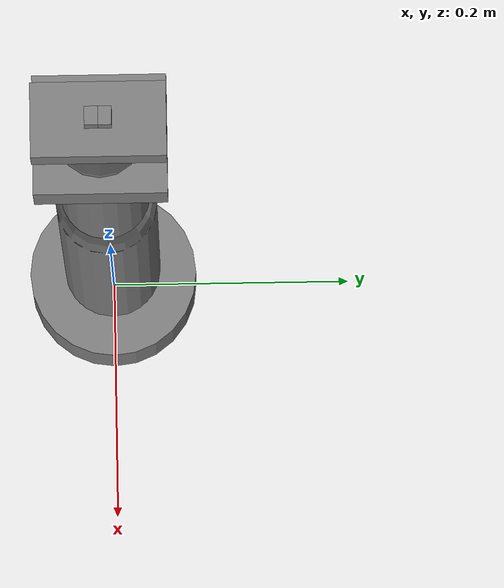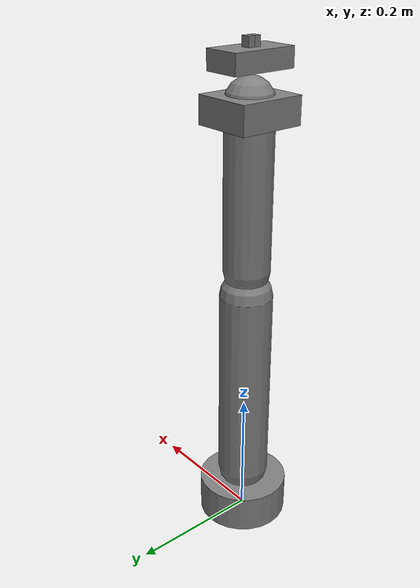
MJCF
<mujoco model="demo3_arm">
  <compiler angle="radian" autolimits="true"/>
  <option timestep="0.002" gravity="0 0 -9.81"/>

  <default>
    <default class="servo">
      <general gaintype="fixed" biastype="affine" gainprm="600" biasprm="0 -600 -60"
               ctrlrange="-3.2 3.2" forcerange="-120 120"/>
    </default>
    <default class="pinch">
      <general gaintype="fixed" biastype="affine" gainprm="400" biasprm="0 -400 -40"
               ctrlrange="-0.05 0.05" forcerange="-60 60"/>
    </default>
    <default class="collision">
      <geom contype="1" conaffinity="1" solref="0.002 1" solimp="0.95 0.99 0.001"/>
    </default>
  </default>

  <worldbody>
    <body name="base" pos="0 0 0">
      <inertial pos="0 0 0.03" mass="4.0" diaginertia="0.02 0.02 0.02"/>
      <geom name="base_geom" type="cylinder" size="0.07 0.03" pos="0 0 0.03" class="collision"/>
      <joint name="q1" type="hinge" axis="0 0 1" range="-3.1 3.1" damping="2.0"/>

      <body name="upper" pos="0 0 0.06">
        <inertial pos="0 0 0.175" mass="2.5" diaginertia="0.06 0.06 0.004"/>
        <geom name="upper_geom" type="capsule" fromto="0 0 0.02 0 0 0.33" size="0.04" class="collision"/>
        <joint name="q2" type="hinge" axis="0 1 0" range="-2.9 2.9" damping="2.0"/>

        <body name="fore" pos="0 0 0.35">
          <inertial pos="0 0 0.14" mass="1.4" diaginertia="0.02 0.02 0.002"/>
          <geom name="fore_geom" type="capsule" fromto="0 0 0.02 0 0 0.26" size="0.035" class="collision"/>
          <joint name="q3" type="hinge" axis="0 1 0" range="-2.9 2.9" damping="1.5"/>

          <body name="tool" pos="0 0 0.28">
            <!-- 腕部俯仰：3 自由度平面臂在"工具必须朝下"时末端只剩一维可达曲线，
                 目标高度会迫使肘部几乎完全折回并自撞；加一个腕部俯仰后
                 "位置(2) + 工具朝下(1)" 三个约束由 4 个自由度承担，可达且姿态自然。 -->
            <joint name="q4" type="hinge" axis="0 1 0" range="-2.9 2.9" damping="1.0"/>
            <inertial pos="0 0 0.02" mass="0.8" diaginertia="0.002 0.002 0.001"/>
            <!-- 碰撞体放在法兰**上方**（局部 -z），避免抓取时压到台面/目标 -->
            <geom name="tool_geom" type="box" size="0.045 0.05 0.02" pos="0 0 -0.03" class="collision"/>
            <site name="flange" pos="0 0 0"/>

            <!-- 腕部两级：q5 绕工具轴滚转、q6 附加俯仰。
                 4 自由度臂无法满足"位置 3 + 姿态 3"六个约束（求解器只能折中，
                 实测夹持区残差 7.8mm 被一致性门禁拒绝），补成 6R 后才恰好可解。 -->
            <body name="wrist_roll" pos="0 0 0">
              <joint name="q5" type="hinge" axis="0 0 1" range="-3.1 3.1" damping="1.0"/>
              <inertial pos="0 0 0" mass="0.2" diaginertia="0.0005 0.0005 0.0005"/>
              <body name="wrist_pitch" pos="0 0 0">
                <joint name="q6" type="hinge" axis="0 1 0" range="-2.9 2.9" damping="1.0"/>
                <inertial pos="0 0 0" mass="0.2" diaginertia="0.0005 0.0005 0.0005"/>
            <body name="palm" pos="0 0 0.02">
              <inertial pos="0 0 0.01" mass="0.3" diaginertia="0.001 0.001 0.0005"/>
              <geom name="palm_geom" type="box" size="0.028 0.05 0.014" pos="0 0 0.015" class="collision"/>
              <body name="finger_l" pos="0 0 0.03">
                <joint name="finger_l_joint" type="slide" axis="0 1 0" range="-0.04 0.04" damping="1.0"/>
                <inertial pos="0 0.005 0" mass="0.06" diaginertia="2e-05 2e-05 2e-05"/>
                <geom name="pad_l" type="box" size="0.007 0.005 0.013" pos="0 0.005 0" class="collision"/>
              </body>
              <body name="finger_r" pos="0 0 0.03">
                <joint name="finger_r_joint" type="slide" axis="0 1 0" range="-0.04 0.04" damping="1.0"/>
                <inertial pos="0 -0.005 0" mass="0.06" diaginertia="2e-05 2e-05 2e-05"/>
                <geom name="pad_r" type="box" size="0.007 0.005 0.013" pos="0 -0.005 0" class="collision"/>
              </body>
            </body>
              </body>
            </body>
          </body>
        </body>
      </body>
    </body>
  </worldbody>

  <actuator>
    <general class="servo" name="m1" joint="q1"/>
    <general class="servo" name="m2" joint="q2"/>
    <general class="servo" name="m3" joint="q3"/>
    <general class="servo" name="m4" joint="q4"/>
    <general class="servo" name="m5" joint="q5"/>
    <general class="servo" name="m6" joint="q6"/>
    <general class="pinch" name="pinch_l" joint="finger_l_joint"/>
    <general class="pinch" name="pinch_r" joint="finger_r_joint"/>
  </actuator>

  <keyframe>
    <key name="home" qpos="0 0.8 2.2 -1.429 0 0 0.030 -0.030"/>
  </keyframe>
</mujoco>
